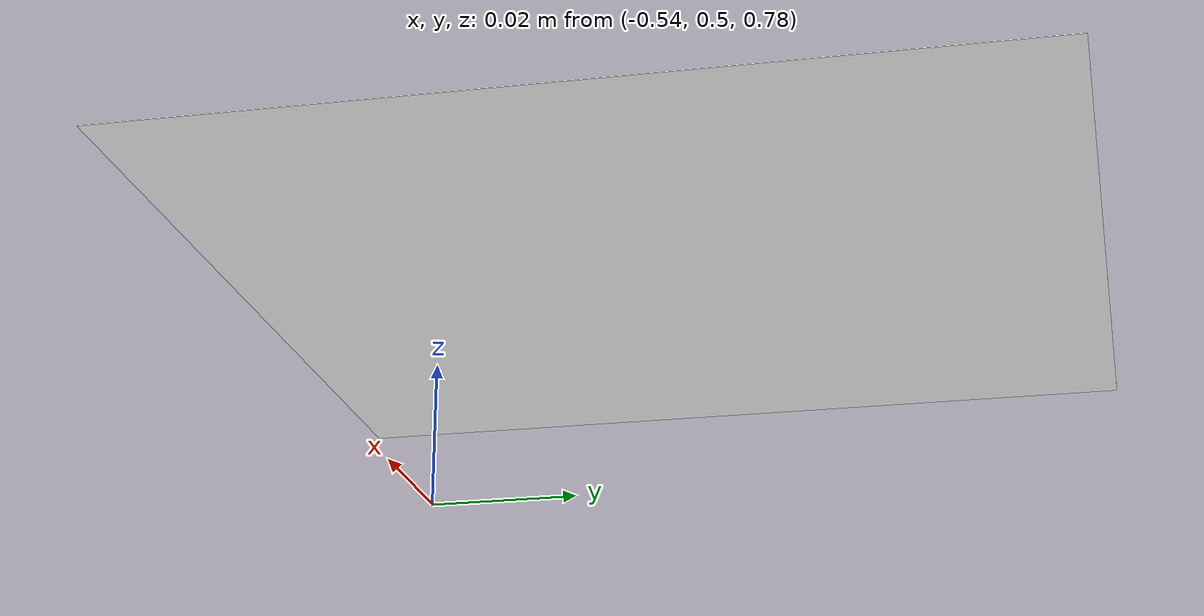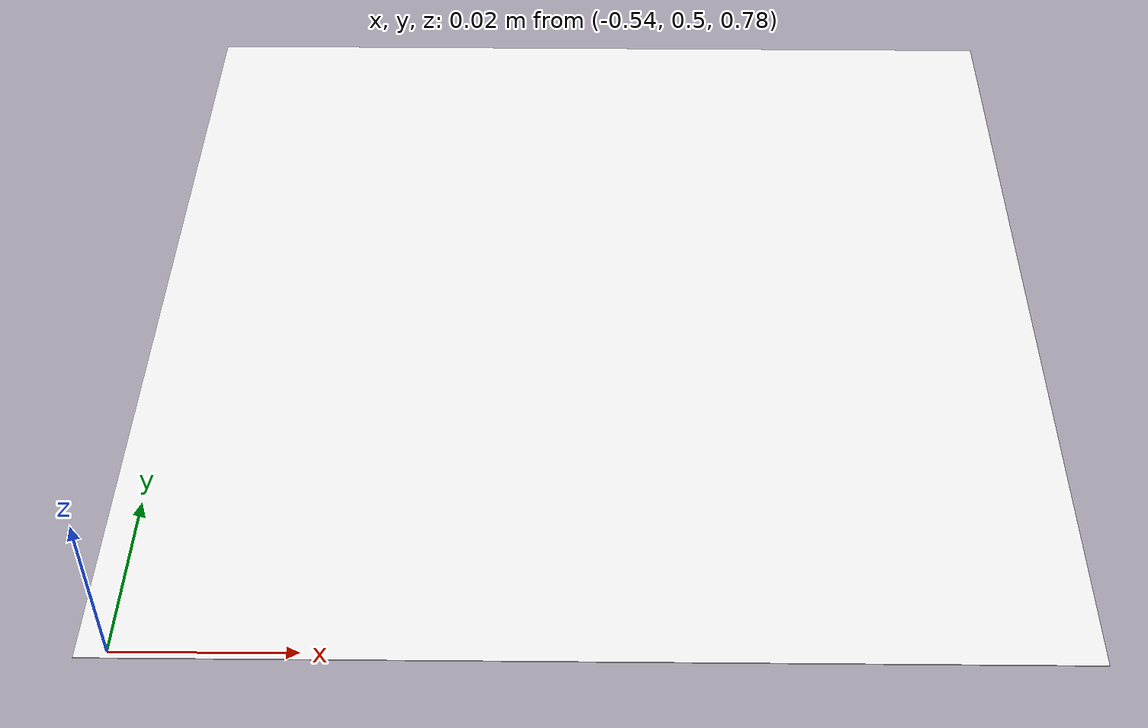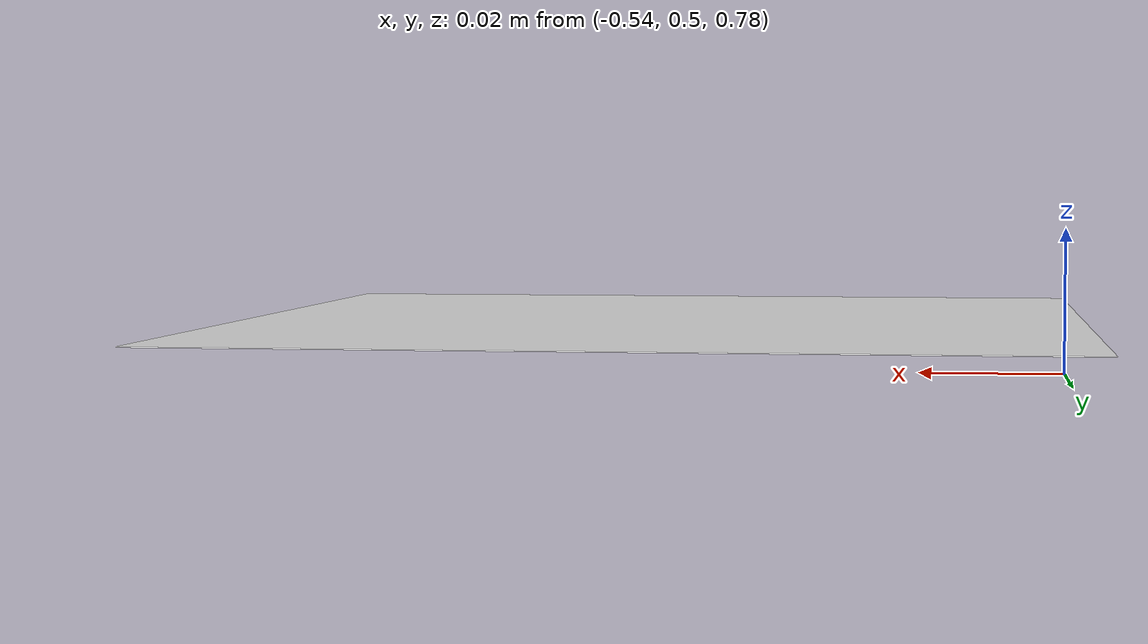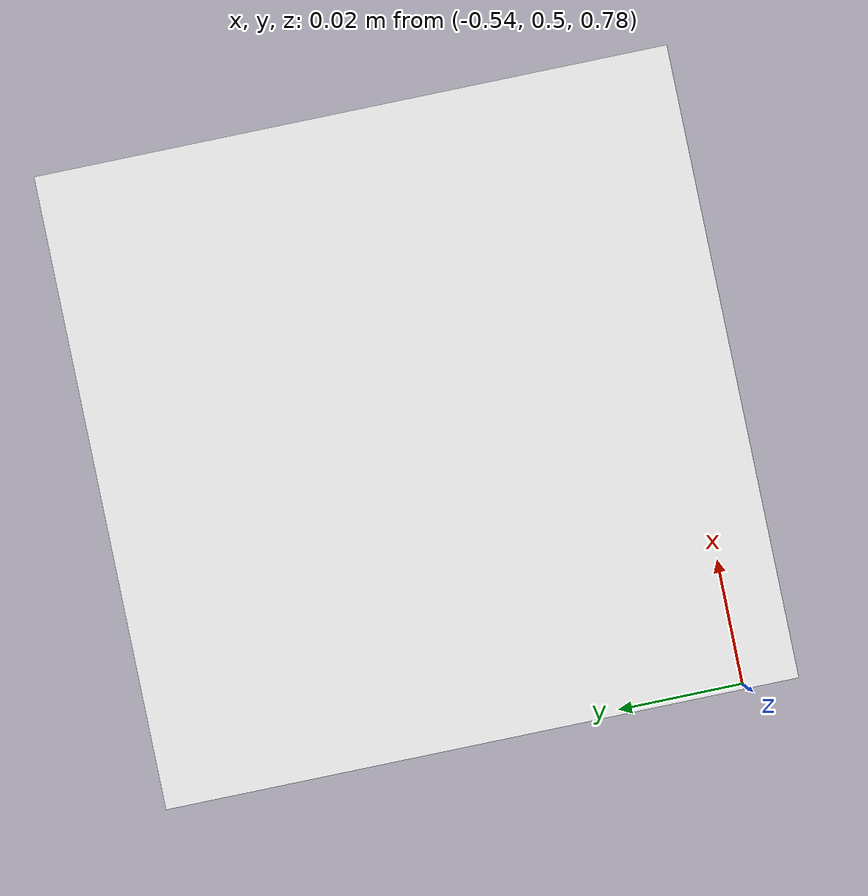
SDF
<?xml version="1.0"?>
<!-- AprilTag 36h11 ID 10 — Modelo para Gazebo Sim -->
<!-- Plano de 0.10m x 0.10m con textura del tag -->
<sdf version="1.9">
  <model name="apriltag_10">
    <!-- AprilTag 36h11 ID 10 — Posición calibrada: x=-0.490, y=0.542, z=0.284 m -->
    <pose>-0.490 0.542 0.79 0 0 0</pose>
    <static>true</static>
    <link name="tag_link">
      <visual name="tag_visual">
        <geometry>
          <plane>
            <normal>0 0 1</normal>
            <size>0.10 0.10</size>
          </plane>
        </geometry>
        <material>
          <diffuse>1 1 1 1</diffuse>
          <specular>0 0 0 1</specular>
          <pbr>
            <metal>
              <albedo_map>model://apriltags/textures/tag36_11_00010.png</albedo_map>
              <metalness>0.0</metalness>
              <roughness>1.0</roughness>
            </metal>
          </pbr>
        </material>
      </visual>
    </link>
  </model>
</sdf>
